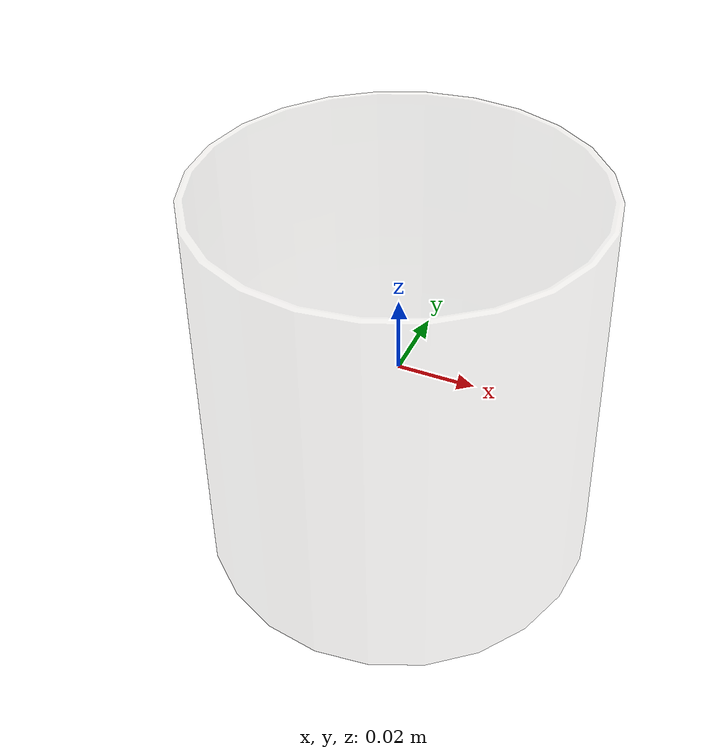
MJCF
<mujoco model="model">
  <option timestep="0.002" gravity="0.0 0.0 -9.81"/>
  <compiler angle="radian"/>
  <asset>
    <mesh file="visual/Clear.obj" name="GlassCup008_Clear_vis"/>
    <texture file="visual/T_BC001.png" name="GlassCup008_Clear_material" type="2d"/>
    <material name="GlassCup008_Clear_material" rgba="1 1 1 0.20000000298023224" texture="GlassCup008_Clear_material" shininess="0.4472135901451111" specular="0.3103448502657381"/>
    <mesh file="collision/collision_mesh_collision_0.obj" name="GlassCup008_collision_mesh_0"/>
    <mesh file="collision/collision_mesh_collision_1.obj" name="GlassCup008_collision_mesh_1"/>
    <mesh file="collision/collision_mesh_collision_2.obj" name="GlassCup008_collision_mesh_2"/>
    <mesh file="collision/collision_mesh_collision_3.obj" name="GlassCup008_collision_mesh_3"/>
    <mesh file="collision/collision_mesh_collision_4.obj" name="GlassCup008_collision_mesh_4"/>
    <mesh file="collision/collision_mesh_collision_5.obj" name="GlassCup008_collision_mesh_5"/>
    <mesh file="collision/collision_mesh_collision_6.obj" name="GlassCup008_collision_mesh_6"/>
    <mesh file="collision/collision_mesh_collision_7.obj" name="GlassCup008_collision_mesh_7"/>
    <mesh file="collision/collision_mesh_collision_8.obj" name="GlassCup008_collision_mesh_8"/>
    <mesh file="collision/collision_mesh_collision_9.obj" name="GlassCup008_collision_mesh_9"/>
    <mesh file="collision/collision_mesh_collision_10.obj" name="GlassCup008_collision_mesh_10"/>
    <mesh file="collision/collision_mesh_collision_11.obj" name="GlassCup008_collision_mesh_11"/>
    <mesh file="collision/collision_mesh_collision_12.obj" name="GlassCup008_collision_mesh_12"/>
    <mesh file="collision/collision_mesh_collision_13.obj" name="GlassCup008_collision_mesh_13"/>
    <mesh file="collision/collision_mesh_collision_14.obj" name="GlassCup008_collision_mesh_14"/>
    <mesh file="collision/collision_mesh_collision_15.obj" name="GlassCup008_collision_mesh_15"/>
  </asset>
  <default>
    <default class="visual">
      <geom conaffinity="0" contype="0" group="1" type="mesh"/>
    </default>
    <default class="collision">
      <geom group="3" rgba="0.5 0 0 0.5" density="1000.0"/>
    </default>
    <default class="spawn">
      <geom group="0" rgba="1 1 1 0.5" contype="0" conaffinity="0"/>
      <site group="0" rgba="1 1 1 0.5"/>
    </default>
    <default class="region">
      <geom group="1" conaffinity="0" contype="0" rgba="0 1 0 0" mass="0"/>
    </default>
  </default>
  <worldbody>
    <body>
      <body name="object">
        <geom mesh="GlassCup008_Clear_vis" type="mesh" solimp="0.998 0.998 0.001" solref="0.001 1" friction="0.95 0.3 0.1" class="visual" material="GlassCup008_Clear_material"/>
        <geom mesh="GlassCup008_collision_mesh_0" type="mesh" class="collision"/>
        <geom mesh="GlassCup008_collision_mesh_1" type="mesh" class="collision"/>
        <geom mesh="GlassCup008_collision_mesh_2" type="mesh" class="collision"/>
        <geom mesh="GlassCup008_collision_mesh_3" type="mesh" class="collision"/>
        <geom mesh="GlassCup008_collision_mesh_4" type="mesh" class="collision"/>
        <geom mesh="GlassCup008_collision_mesh_5" type="mesh" class="collision"/>
        <geom mesh="GlassCup008_collision_mesh_6" type="mesh" class="collision"/>
        <geom mesh="GlassCup008_collision_mesh_7" type="mesh" class="collision"/>
        <geom mesh="GlassCup008_collision_mesh_8" type="mesh" class="collision"/>
        <geom mesh="GlassCup008_collision_mesh_9" type="mesh" class="collision"/>
        <geom mesh="GlassCup008_collision_mesh_10" type="mesh" class="collision"/>
        <geom mesh="GlassCup008_collision_mesh_11" type="mesh" class="collision"/>
        <geom mesh="GlassCup008_collision_mesh_12" type="mesh" class="collision"/>
        <geom mesh="GlassCup008_collision_mesh_13" type="mesh" class="collision"/>
        <geom mesh="GlassCup008_collision_mesh_14" type="mesh" class="collision"/>
        <geom mesh="GlassCup008_collision_mesh_15" type="mesh" class="collision"/>
        <geom class="region" name="reg_bbox" type="box" pos="-2.61500000000095e-06 5.650000000009814e-07 -1.2000000000032818e-06" size="0.053455384999999994 0.053457435 0.051622799999999996"/>
        <geom class="region" name="liquid" type="cylinder" rgba="0 0 0 0" size="0.047 0.035" pos="0.000002 0.000000 -0.0105"/>
        <geom class="region" name="reg_int" type="cylinder" rgba="0 0 0 0" size="0.04 0.05" pos="0.000002 0.000000 0.006"/>
      </body>
    </body>
  </worldbody>
  <actuator/>
</mujoco>
